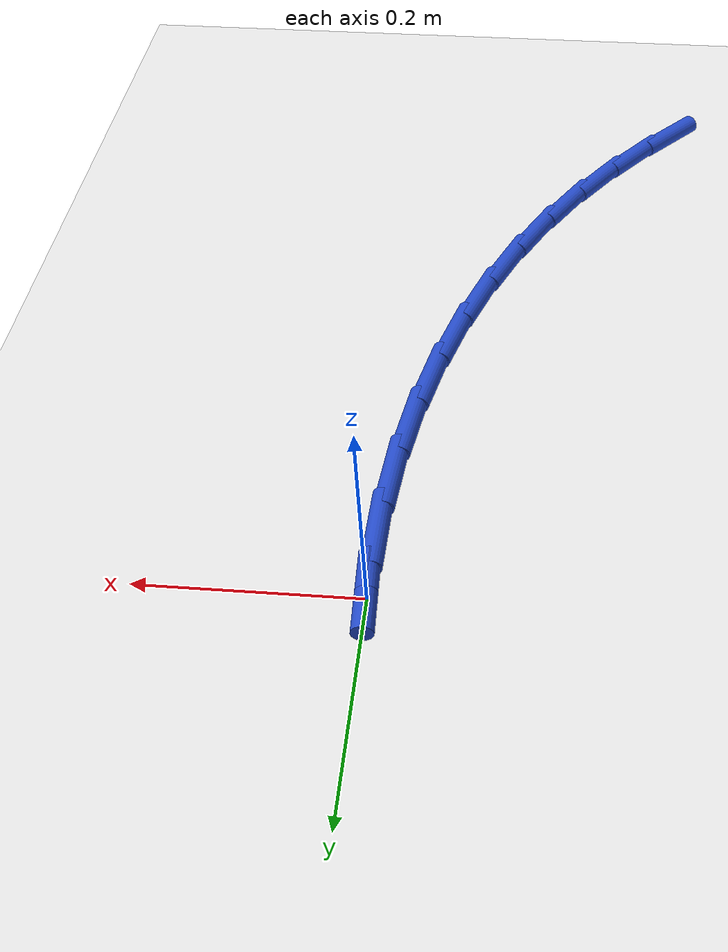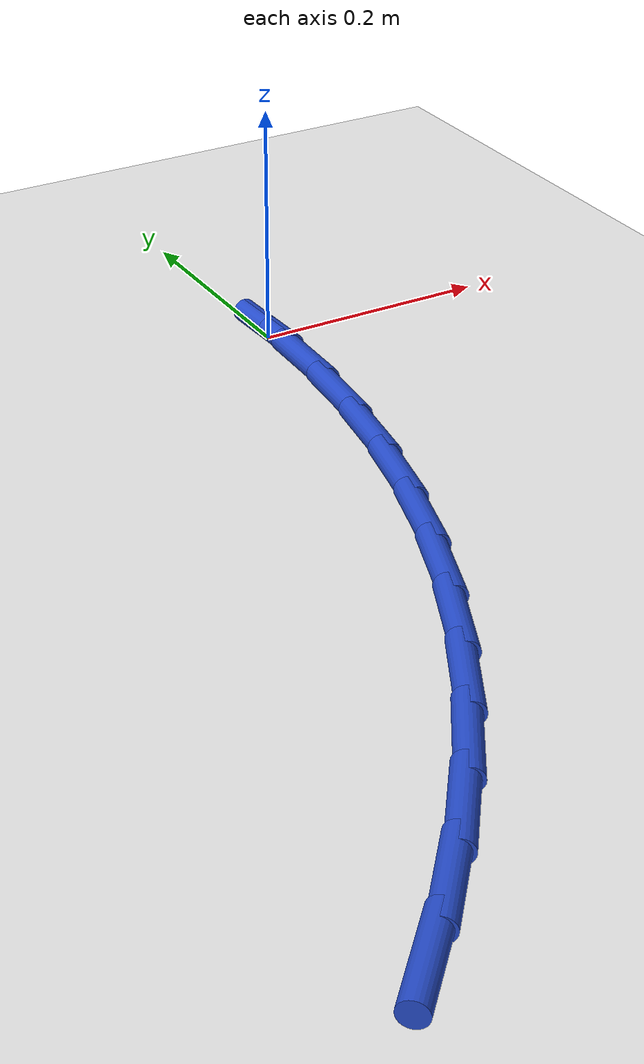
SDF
<sdf version="1.6">
 <world name="default">
  <model name="ground_plane">
   <static>1</static>
   <link name="link">
    <collision name="collision">
     <geometry><plane><normal>0 0 1</normal><size>100 100</size></plane></geometry>
     <surface><friction><ode><mu>100</mu><mu2>50</mu2></ode></friction></surface>
    </collision>
    <visual name="visual">
     <cast_shadows>0</cast_shadows>
     <geometry><plane><normal>0 0 1</normal><size>100 100</size></plane></geometry>
     <material>
      <script><uri>file://media/materials/scripts/gazebo.material</uri><name>Gazebo/WhiteGlow</name></script>
     </material>
    </visual>
   </link>
  </model>
  <model name="line">
   <link name="link_0">
    <pose>4.85722573273506e-17 1.3877787807814457e-16 0.01 0 1.57 -1.5320625314548373</pose>
    <collision name="collision">
     <geometry><cylinder><radius>0.01</radius><length>0.08</length></cylinder></geometry>
    </collision>
    <visual name="visual">
     <material>
      <script><name>Gazebo/Blue</name><uri>file://media/materials/scripts/gazebo.material</uri></script>
     </material>
     <geometry><cylinder><radius>0.01</radius><length>0.08</length></cylinder></geometry>
    </visual>
   </link>
   <link name="link_98">
    <pose>-0.28298437357134576 -0.6897222491115426 0.01 0 1.57 0.8092564020699167</pose>
    <collision name="collision">
     <geometry><cylinder><radius>0.01</radius><length>0.08</length></cylinder></geometry>
    </collision>
    <visual name="visual">
     <material>
      <script><name>Gazebo/Blue</name><uri>file://media/materials/scripts/gazebo.material</uri></script>
     </material>
     <geometry><cylinder><radius>0.01</radius><length>0.08</length></cylinder></geometry>
    </visual>
   </link>
   <link name="link_99">
    <pose>-0.2392234403864363 -0.6438217460056601 0.01 0 1.57 0.8722384824372782</pose>
    <collision name="collision">
     <geometry><cylinder><radius>0.01</radius><length>0.08</length></cylinder></geometry>
    </collision>
    <visual name="visual">
     <material>
      <script><name>Gazebo/Blue</name><uri>file://media/materials/scripts/gazebo.material</uri></script>
     </material>
     <geometry><cylinder><radius>0.01</radius><length>0.08</length></cylinder></geometry>
    </visual>
   </link>
   <link name="link_100">
    <pose>-0.1985434644503723 -0.5953831739715637 0.01 0 1.57 0.9396797773100528</pose>
    <collision name="collision">
     <geometry><cylinder><radius>0.01</radius><length>0.08</length></cylinder></geometry>
    </collision>
    <visual name="visual">
     <material>
      <script><name>Gazebo/Blue</name><uri>file://media/materials/scripts/gazebo.material</uri></script>
     </material>
     <geometry><cylinder><radius>0.01</radius><length>0.08</length></cylinder></geometry>
    </visual>
   </link>
   <link name="link_101">
    <pose>-0.1612604161841408 -0.5443682456074391 0.01 0 1.57 1.010691573085249</pose>
    <collision name="collision">
     <geometry><cylinder><radius>0.01</radius><length>0.08</length></cylinder></geometry>
    </collision>
    <visual name="visual">
     <material>
      <script><name>Gazebo/Blue</name><uri>file://media/materials/scripts/gazebo.material</uri></script>
     </material>
     <geometry><cylinder><radius>0.01</radius><length>0.08</length></cylinder></geometry>
    </visual>
   </link>
   <link name="link_102">
    <pose>-0.12765569095064228 -0.4907803524447387 0.01 0 1.57 1.0811759516227246</pose>
    <collision name="collision">
     <geometry><cylinder><radius>0.01</radius><length>0.08</length></cylinder></geometry>
    </collision>
    <visual name="visual">
     <material>
      <script><name>Gazebo/Blue</name><uri>file://media/materials/scripts/gazebo.material</uri></script>
     </material>
     <geometry><cylinder><radius>0.01</radius><length>0.08</length></cylinder></geometry>
    </visual>
   </link>
   <link name="link_103">
    <pose>-0.09783938415509771 -0.43482938167683743 0.01 0 1.57 1.150056364976535</pose>
    <collision name="collision">
     <geometry><cylinder><radius>0.01</radius><length>0.08</length></cylinder></geometry>
    </collision>
    <visual name="visual">
     <material>
      <script><name>Gazebo/Blue</name><uri>file://media/materials/scripts/gazebo.material</uri></script>
     </material>
     <geometry><cylinder><radius>0.01</radius><length>0.08</length></cylinder></geometry>
    </visual>
   </link>
   <link name="link_104">
    <pose>-0.07186863765807708 -0.3767890540053076 0.01 0 1.57 1.2175725163789608</pose>
    <collision name="collision">
     <geometry><cylinder><radius>0.01</radius><length>0.08</length></cylinder></geometry>
    </collision>
    <visual name="visual">
     <material>
      <script><name>Gazebo/Blue</name><uri>file://media/materials/scripts/gazebo.material</uri></script>
     </material>
     <geometry><cylinder><radius>0.01</radius><length>0.08</length></cylinder></geometry>
    </visual>
   </link>
   <link name="link_105">
    <pose>-0.049800577799849546 -0.31693310884086606 0.01 0 1.57 1.2839945744195367</pose>
    <collision name="collision">
     <geometry><cylinder><radius>0.01</radius><length>0.08</length></cylinder></geometry>
    </collision>
    <visual name="visual">
     <material>
      <script><name>Gazebo/Blue</name><uri>file://media/materials/scripts/gazebo.material</uri></script>
     </material>
     <geometry><cylinder><radius>0.01</radius><length>0.08</length></cylinder></geometry>
    </visual>
   </link>
   <link name="link_106">
    <pose>-0.03169233092068305 -0.2555352855942264 0.01 0 1.57 1.349611506630844</pose>
    <collision name="collision">
     <geometry><cylinder><radius>0.01</radius><length>0.08</length></cylinder></geometry>
    </collision>
    <visual name="visual">
     <material>
      <script><name>Gazebo/Blue</name><uri>file://media/materials/scripts/gazebo.material</uri></script>
     </material>
     <geometry><cylinder><radius>0.01</radius><length>0.08</length></cylinder></geometry>
    </visual>
   </link>
   <link name="link_107">
    <pose>-0.01760102336084651 -0.19286932367610543 0.01 0 1.57 1.4147216264149454</pose>
    <collision name="collision">
     <geometry><cylinder><radius>0.01</radius><length>0.08</length></cylinder></geometry>
    </collision>
    <visual name="visual">
     <material>
      <script><name>Gazebo/Blue</name><uri>file://media/materials/scripts/gazebo.material</uri></script>
     </material>
     <geometry><cylinder><radius>0.01</radius><length>0.08</length></cylinder></geometry>
    </visual>
   </link>
   <link name="link_108">
    <pose>-0.007583781460608074 -0.1292089624972167 0.01 0 1.57 1.479624551241398</pose>
    <collision name="collision">
     <geometry><cylinder><radius>0.01</radius><length>0.08</length></cylinder></geometry>
    </collision>
    <visual name="visual">
     <material>
      <script><name>Gazebo/Blue</name><uri>file://media/materials/scripts/gazebo.material</uri></script>
     </material>
     <geometry><cylinder><radius>0.01</radius><length>0.08</length></cylinder></geometry>
    </visual>
   </link>
   <link name="link_109">
    <pose>-0.0016977315602364363 -0.06482794146827693 0.01 0 1.57 1.544614042341618</pose>
    <collision name="collision">
     <geometry><cylinder><radius>0.01</radius><length>0.08</length></cylinder></geometry>
    </collision>
    <visual name="visual">
     <material>
      <script><name>Gazebo/Blue</name><uri>file://media/materials/scripts/gazebo.material</uri></script>
     </material>
     <geometry><cylinder><radius>0.01</radius><length>0.08</length></cylinder></geometry>
    </visual>
   </link>
   <link name="link_110">
    <pose>4.85722573273506e-17 1.942890293094024e-16 0.01 0 1.57 -1.5316214696564194</pose>
    <collision name="collision">
     <geometry><cylinder><radius>0.01</radius><length>0.08</length></cylinder></geometry>
    </collision>
    <visual name="visual">
     <material>
      <script><name>Gazebo/Blue</name><uri>file://media/materials/scripts/gazebo.material</uri></script>
     </material>
     <geometry><cylinder><radius>0.01</radius><length>0.08</length></cylinder></geometry>
    </visual>
   </link>
  </model>
 </world>
</sdf>
